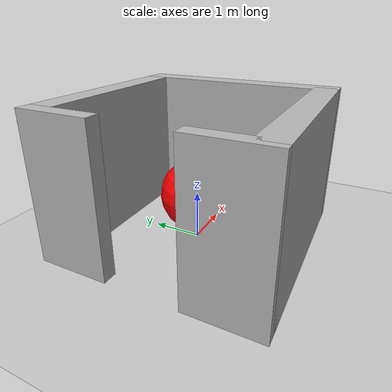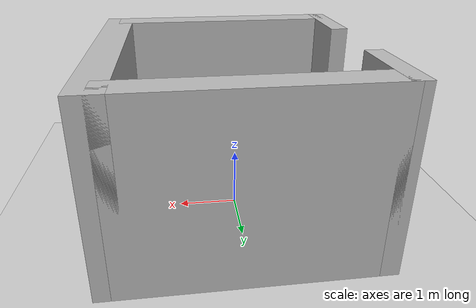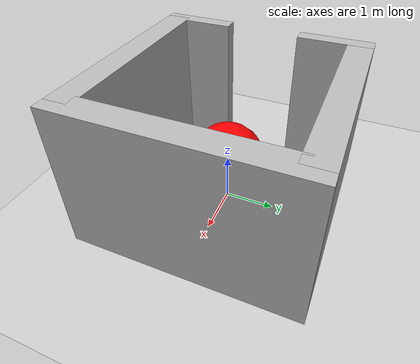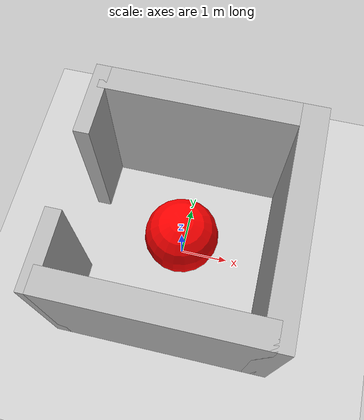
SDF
<?xml version="1.0" ?>
<sdf version="1.9">
    <world name="demo_world">
        <physics name="phys_eng" type="dartsim">
            <max_step_size>0.01</max_step_size>
            <real_time_factor>0.95</real_time_factor>
        </physics>
        <plugin filename="gz-sim-physics-system" name="gz::sim::systems::Physics"/>
        <plugin filename="gz-sim-scene-broadcaster-system" name="gz::sim::systems::SceneBroadcaster"/>
        <plugin filename="gz-sim-user-commands-system" name="gz::sim::systems::UserCommands"/>
        <plugin filename="gz-sim-sensors-system" name="gz::sim::systems::Sensors">
            <render_engine>ogre2</render_engine>
        </plugin>

        <light type="directional" name="sun">
            <cast_shadows>true</cast_shadows>
            <pose>0 0 10 0 0 0</pose>
            <direction>-0.5 0.1 -0.9</direction>
        </light>

        <include>
            <uri>https://fuel.gazebosim.org/1.0/OpenRobotics/models/Ground Plane</uri>
        </include>

        <include>
            <uri>model://room</uri>
        </include>

        <include>
            <uri>model://camera_sensor</uri>
            <pose>-1 0 1.2 0 0 0</pose>
        </include>
    </world>
</sdf>

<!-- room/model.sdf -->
<sdf version="1.9">
    <model name="room">
        <static>true</static>

        <link name="center"> </link>

        <link name="wall_one">
            <pose relative_to="center">0 2.0 1.5 0 0 0</pose>
            <visual name="vis_one">
                <geometry>
                    <box>
                        <size>4.0 0.5 3.0</size>
                    </box>
                </geometry>
            </visual>
        </link>

        <link name="wall_two">
            <pose relative_to="center">0 -2.0 1.5 0 0 0</pose>
            <visual name="vis_two">
                <geometry>
                    <box>
                        <size>4.0 0.5 3.0</size>
                    </box>
                </geometry>
            </visual>
        </link>

        <link name="wall_three">
            <pose relative_to="center">2.0 0.0 1.5 0 0 0</pose>
            <visual name="Vis">
                <geometry>
                    <box>
                        <size>0.5 4.5 3.0</size>
                    </box>
                </geometry>
            </visual>
        </link>

        <link name="door_wall_p1">
            <pose relative_to="center">-2.0 1.5 1.5 0 0 0</pose>
            <visual name="Vis">
                <geometry>
                    <box>
                        <size>0.3 1.5 3.0</size>
                    </box>
                </geometry>
            </visual>
        </link>

        <link name="door_wall_p2">
            <pose relative_to="center">-2.0 -1.5 1.5 0 0 0</pose>
            <visual name="Vis">
                <geometry>
                    <box>
                        <size>0.3 1.5 3.0</size>
                    </box>
                </geometry>
            </visual>
        </link>

        <include>
            <uri>model://red_sphere</uri>
            <name>Red_sphere</name>
        </include>

    </model>
</sdf>

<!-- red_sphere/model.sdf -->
<sdf version="1.9">
    <model name="red_sphere">
        <link name="linker">
            <pose>0 0 1.0 0 0 0</pose>
            <visual name="vis">
                <geometry>
                    <sphere>
                        <radius>0.75</radius>
                    </sphere>
                </geometry>
                <material>
                    <ambient>1.0 0 0 1</ambient>
                    <diffuse>1.0 0 0 1</diffuse>
                    <specular>1.0 0 0 1</specular>
                </material>
            </visual>
            <collision name="col">
                <geometry>
                    <sphere>
                        <radius>0.75</radius>
                    </sphere>
                </geometry>
            </collision>
        </link>
    </model>
</sdf>

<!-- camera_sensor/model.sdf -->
<sdf version="1.9">
    <model name="camera_sensor">
        <static>true</static>
        <link name="cam_body">
            <sensor name="cam_sens" type="camera">
                <always_on>true</always_on>
                <update_rate>30</update_rate>
                <visualize>true</visualize>
                <topic>camera/image</topic>
            </sensor>
        </link>
    </model>
</sdf>
